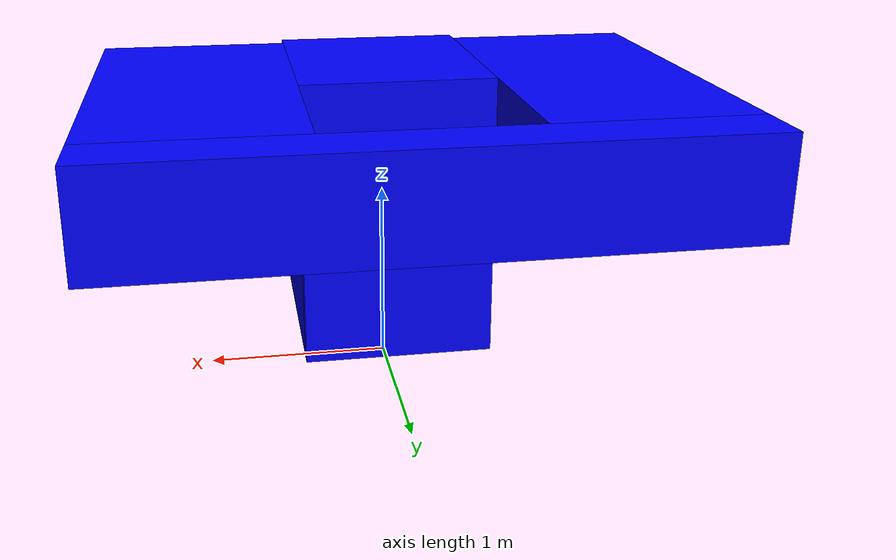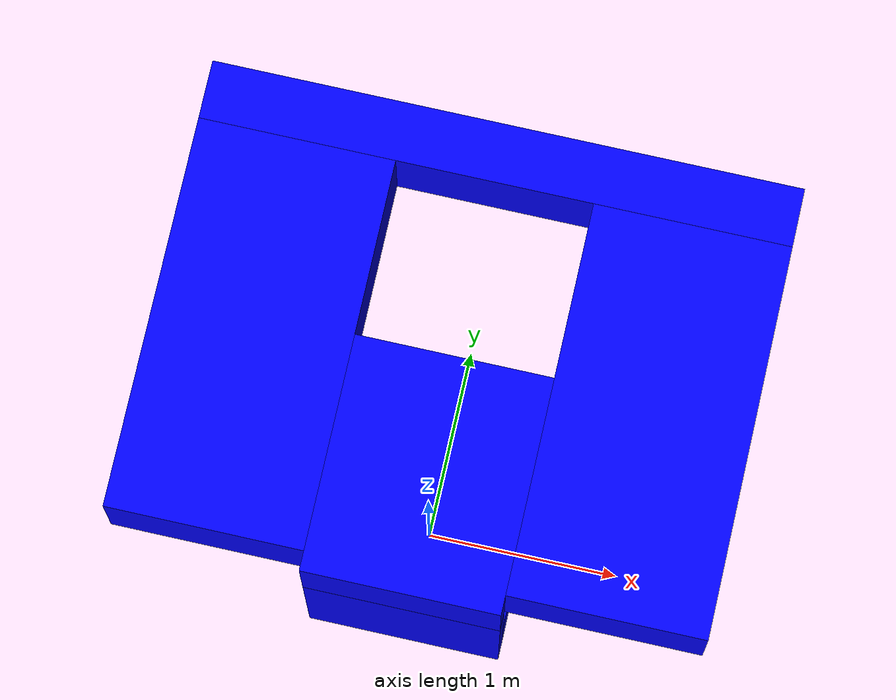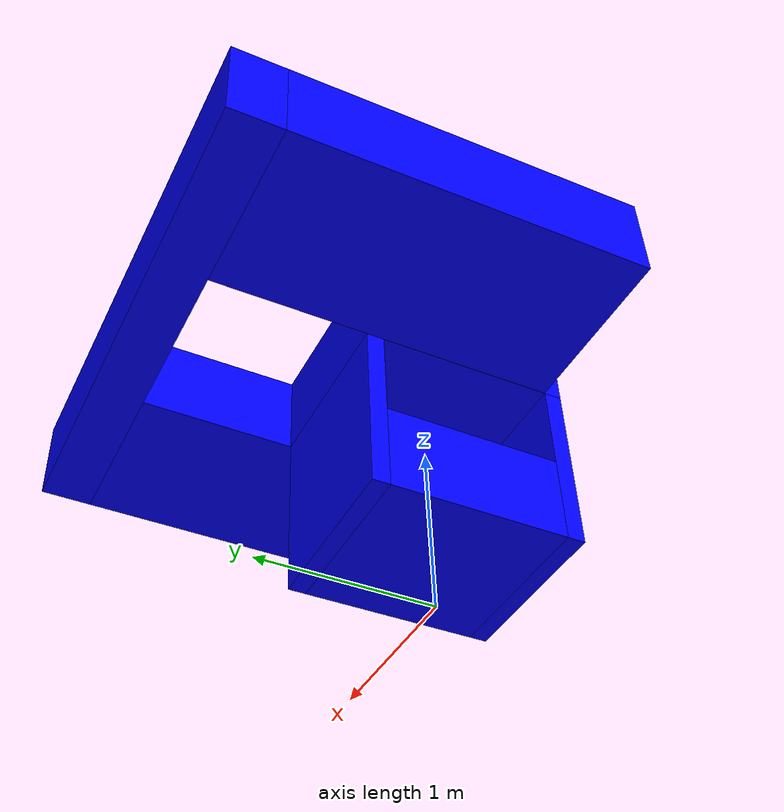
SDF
<?xml version="1.0"?>
<sdf version="1.8">
  <model name="box">

    <pose>0 0 1.5 0 0 0</pose>
    <link name="body">
      <inertial>
        <mass>100.0</mass>
        <inertia>
          <ixx>0.166667</ixx>
          <ixy>0</ixy>
          <ixz>0</ixz>
          <iyy>0.166667</iyy>
          <iyz>0</iyz>
          <izz>0.166667</izz>
        </inertia>
      </inertial>
      <gravity>true</gravity>
      <kinematic>true</kinematic>
      <collision name="collision_top">
        <geometry><box><size>1 1.2 0.5</size></box></geometry>
      </collision>
      <visual name="visual_top">
        <geometry><box><size>1 1.2 0.5</size></box></geometry>
        <material><ambient>0 0 1 1</ambient><diffuse>0 0 1 1</diffuse></material>
      </visual>
      <collision name="collision_left">
        <pose>0 0.55 -0.75 0 0 0</pose>
        <geometry><box><size>1 0.1 1</size></box></geometry>
      </collision>
      <visual name="visual_left">
        <pose>0 0.55 -0.75 0 0 0</pose>
        <geometry><box><size>1 0.1 1</size></box></geometry>
        <material><ambient>0 0 1 1</ambient><diffuse>0 0 1 1</diffuse></material>
      </visual>
      <collision name="collision_right">
        <pose>0 -0.55 -0.75 0 0 0</pose>
        <geometry><box><size>1 0.1 1</size></box></geometry>
      </collision>
      <visual name="visual_right">
        <pose>0 -0.55 -0.75 0 0 0</pose>
        <geometry><box><size>1 0.1 1</size></box></geometry>
        <material><ambient>0 0 1 1</ambient><diffuse>0 0 1 1</diffuse></material>
      </visual>
      <collision name="collision_top1">
        <pose>1 0.5 0 0 0 0</pose>
        <geometry><box><size>1 2 0.5</size></box></geometry>
      </collision>
      <visual name="visual_top1">
        <pose>1 0.5 0 0 0 0</pose>
        <geometry><box><size>1 2 0.5</size></box></geometry>
        <material><ambient>0 0 1 1</ambient><diffuse>0 0 1 1</diffuse></material>
      </visual>
      <collision name="collision_top2">
        <pose>-1 0.5 0 0 0 0</pose>
        <geometry><box><size>1 2 0.5</size></box></geometry>
      </collision>
      <visual name="visual_top2">
        <pose>-1 0.5 0 0 0 0</pose>
        <geometry><box><size>1 2 0.5</size></box></geometry>
        <material><ambient>0 0 1 1</ambient><diffuse>0 0 1 1</diffuse></material>
      </visual>
      <collision name="collision_left2">
        <pose>0 1.65 0 0 0 0</pose>
        <geometry><box><size>1 0.3 0.5</size></box></geometry>
      </collision>
      <visual name="visual_left2">
        <pose>0 1.65 0 0 0 0</pose>
        <geometry><box><size>3 0.3 0.5</size></box></geometry>
        <material><ambient>0 0 1 1</ambient><diffuse>0 0 1 1</diffuse></material>
      </visual>
      <collision name="collision_down">
        <pose>0 0 -1 0 0 0</pose>
        <geometry><box><size>1 1 0.5</size></box></geometry>
      </collision>
      <visual name="visual_down">
        <pose>0 0 -1 0 0 0</pose>
        <geometry><box><size>1 1 0.5</size></box></geometry>
        <material><ambient>0 0 1 1</ambient><diffuse>0 0 1 1</diffuse></material>
      </visual>
    </link>
    <plugin filename="gz-sim-velocity-control-system" name="gz::sim::systems::VelocityControl">
      <topic>/cmd_vel</topic>
    </plugin>
  </model>
</sdf>
